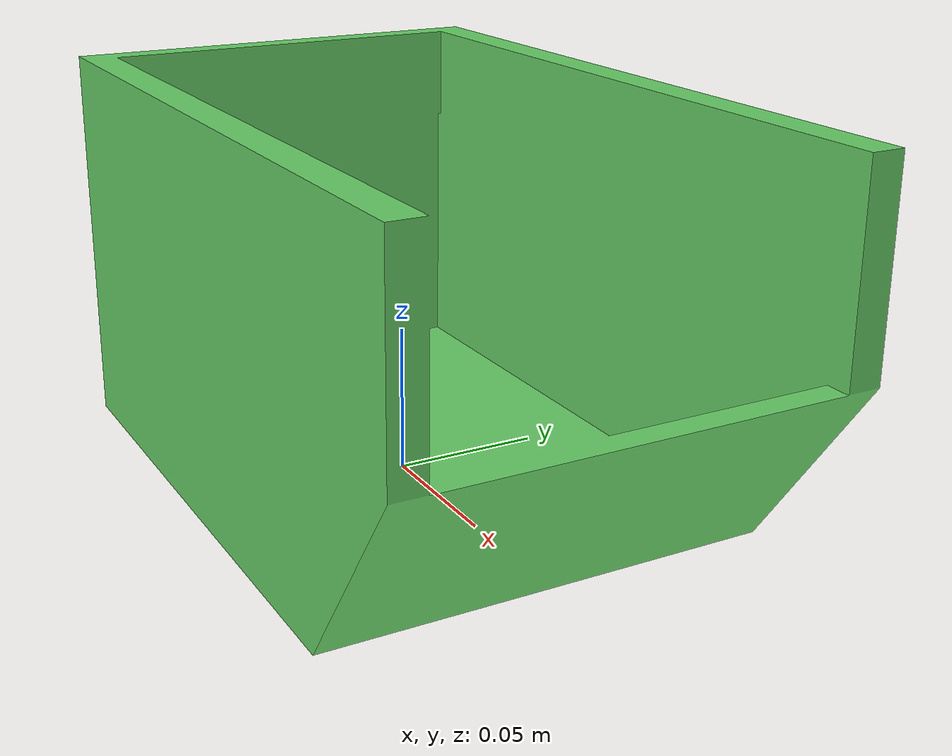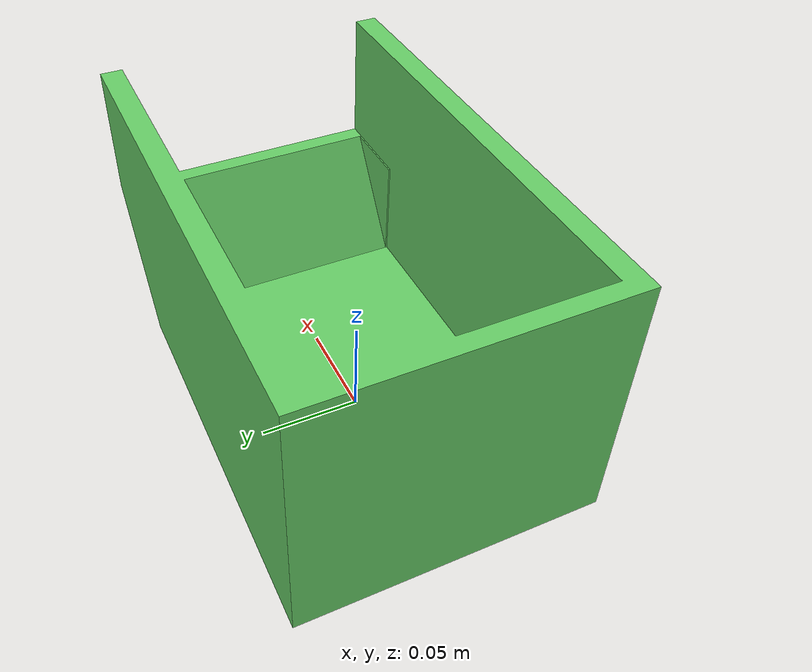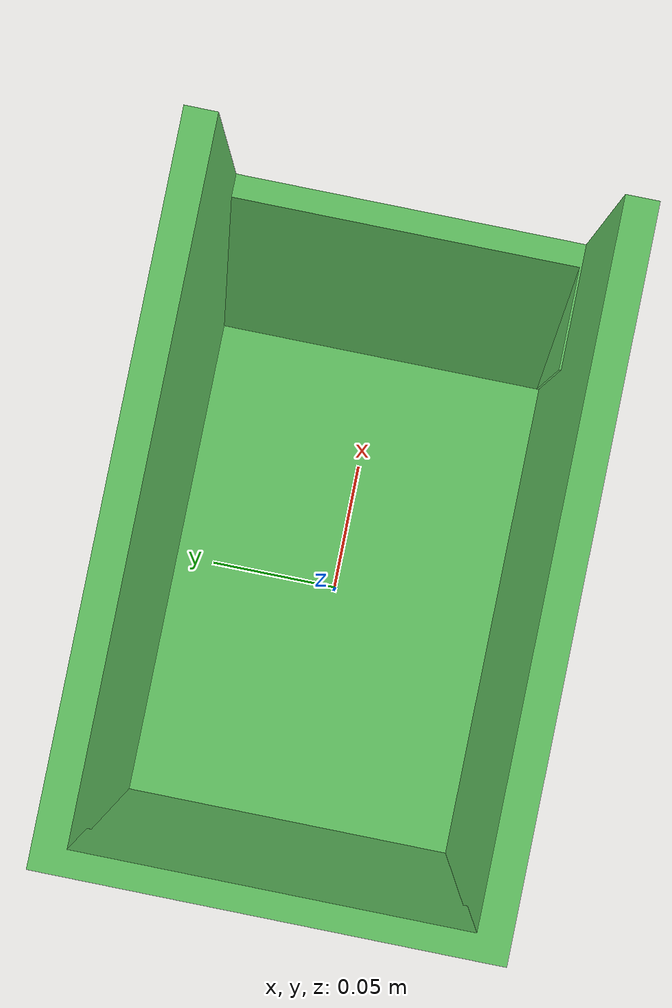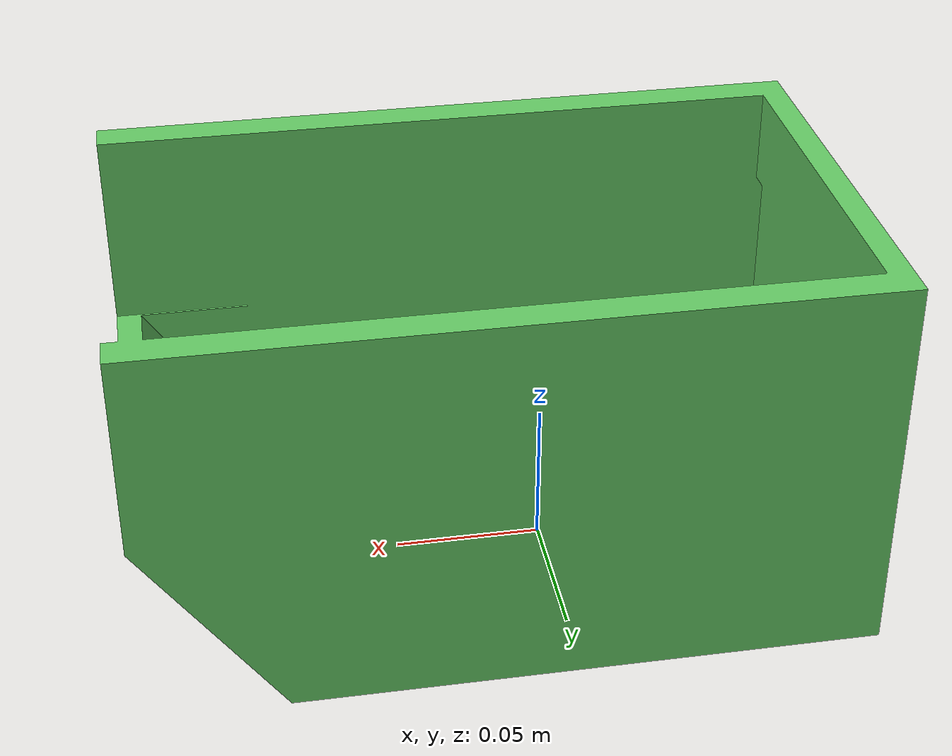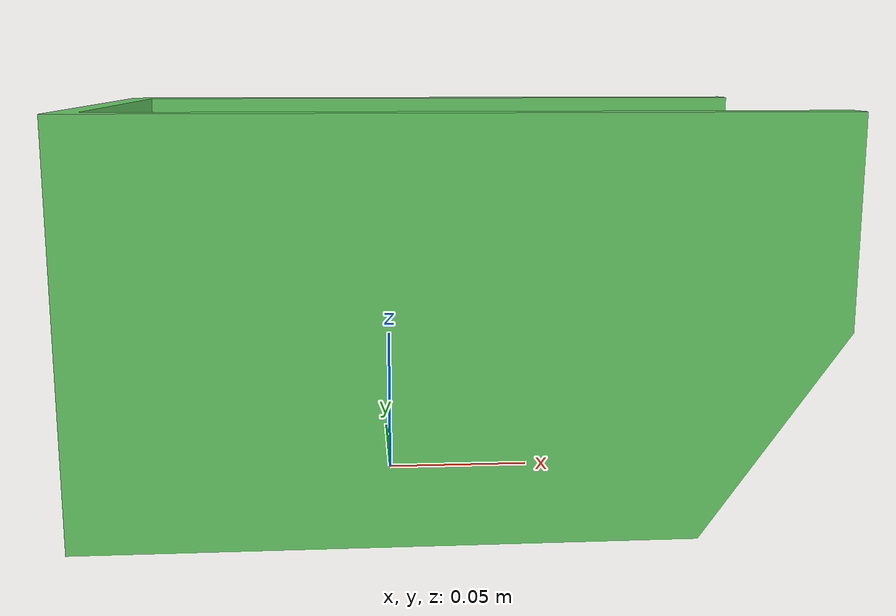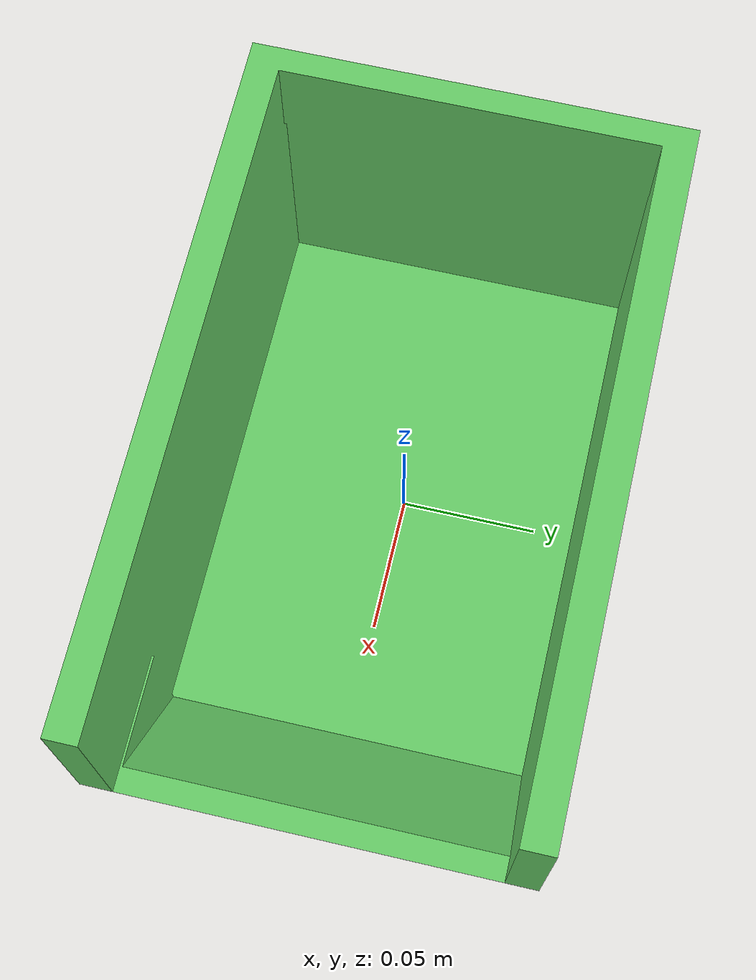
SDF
<?xml version="1.0"?>
<sdf version="1.9">
  <model name="rs3">
    <static>true</static>
    <link name="container_link">
      <collision name="collision">
        <pose>0 0 0.04 0 0 0</pose>
        <geometry>
          <box>
            <size>0.14 0.14 0.08</size>
          </box>
        </geometry>
      </collision>
      <visual name="visual">
        <pose>0 0 0 0 0 0</pose>
        <geometry>
          <mesh>
            <!-- Shared mesh under legacy weighing_container package tree. -->
            <uri>model://weighing_container/meshes/rs3_container.STL</uri>
            <scale>0.001 0.001 0.001</scale>
          </mesh>
        </geometry>
        <material>
          <ambient>0.4 0.8 0.4 1.0</ambient>
          <diffuse>0.4 0.8 0.4 1.0</diffuse>
          <specular>0.2 0.2 0.2 1.0</specular>
        </material>
      </visual>
    </link>
  </model>
</sdf>
